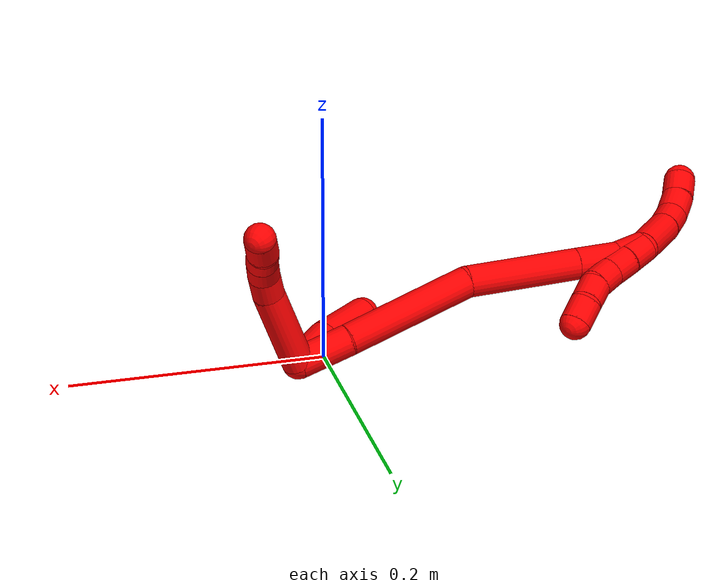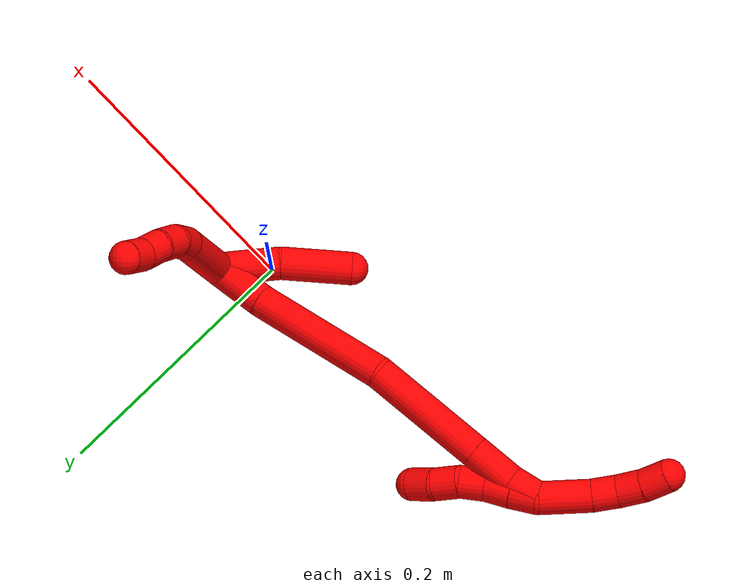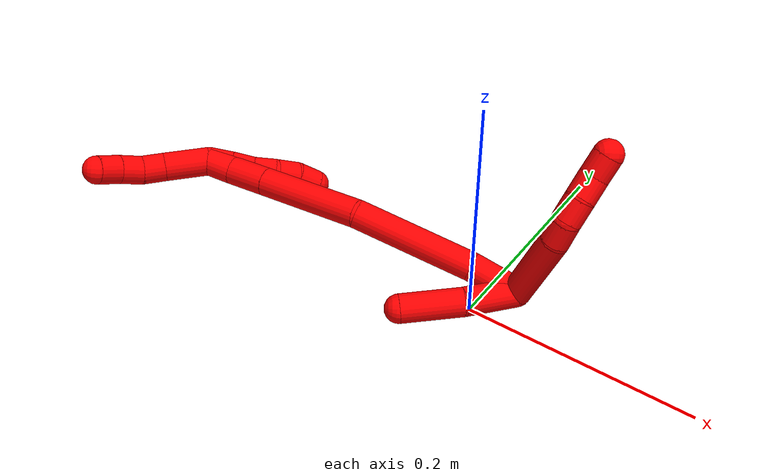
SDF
<sdf version="1.7">
 <world name="default">
  <model name="2">
   <static>0</static>
   <link name="2">
    <collision name="collision-cylinder-e_1_2_8">
     <pose>0.01769 0.029109 -0.005879 -1.77007 0.537238 -0.649055</pose>
     <geometry><cylinder><radius>0.0125</radius><length>0.069132</length></cylinder></geometry>
     <surface>
      <friction><ode><mu>1.16</mu><mu2>1.16</mu2><slip1>0</slip1><slip2>0</slip2></ode></friction>
      <contact><ode><kp>1e+06</kp><kd>1</kd><max_vel>0</max_vel><min_depth>0.001</min_depth></ode></contact>
     </surface>
    </collision>
    <visual name="visual-cylinder-e_1_2_8">
     <pose>0.01769 0.029109 -0.005879 -1.77007 0.537238 -0.649055</pose>
     <geometry><cylinder><radius>0.0125</radius><length>0.069132</length></cylinder></geometry>
     <material><ambient>1 0 0 1</ambient></material>
    </visual>
    <collision name="collision-cylinder-e_2_8_9">
     <pose>0.038823 0.067751 -0.013688 -1.77066 0.340202 -0.414064</pose>
     <geometry><cylinder><radius>0.0125</radius><length>0.020637</length></cylinder></geometry>
     <surface>
      <friction><ode><mu>1.16</mu><mu2>1.16</mu2><slip1>0</slip1><slip2>0</slip2></ode></friction>
      <contact><ode><kp>1e+06</kp><kd>1</kd><max_vel>0</max_vel><min_depth>0.001</min_depth></ode></contact>
     </surface>
    </collision>
    <visual name="visual-cylinder-e_2_8_9">
     <pose>0.038823 0.067751 -0.013688 -1.77066 0.340202 -0.414064</pose>
     <geometry><cylinder><radius>0.0125</radius><length>0.020637</length></cylinder></geometry>
     <material><ambient>1 0 0 1</ambient></material>
    </visual>
    <collision name="collision-cylinder-e_3_9_10">
     <pose>0.042839 0.086607 -0.019432 -1.95904 0.056856 -0.084654</pose>
     <geometry><cylinder><radius>0.0125</radius><length>0.020175</length></cylinder></geometry>
     <surface>
      <friction><ode><mu>1.16</mu><mu2>1.16</mu2><slip1>0</slip1><slip2>0</slip2></ode></friction>
      <contact><ode><kp>1e+06</kp><kd>1</kd><max_vel>0</max_vel><min_depth>0.001</min_depth></ode></contact>
     </surface>
    </collision>
    <visual name="visual-cylinder-e_3_9_10">
     <pose>0.042839 0.086607 -0.019432 -1.95904 0.056856 -0.084654</pose>
     <geometry><cylinder><radius>0.0125</radius><length>0.020175</length></cylinder></geometry>
     <material><ambient>1 0 0 1</ambient></material>
    </visual>
    <collision name="collision-cylinder-e_4_10_11">
     <pose>0.042311 0.104796 -0.027788 -2.04424 -0.1101 0.179808</pose>
     <geometry><cylinder><radius>0.0125</radius><length>0.020048</length></cylinder></geometry>
     <surface>
      <friction><ode><mu>1.16</mu><mu2>1.16</mu2><slip1>0</slip1><slip2>0</slip2></ode></friction>
      <contact><ode><kp>1e+06</kp><kd>1</kd><max_vel>0</max_vel><min_depth>0.001</min_depth></ode></contact>
     </surface>
    </collision>
    <visual name="visual-cylinder-e_4_10_11">
     <pose>0.042311 0.104796 -0.027788 -2.04424 -0.1101 0.179808</pose>
     <geometry><cylinder><radius>0.0125</radius><length>0.020048</length></cylinder></geometry>
     <material><ambient>1 0 0 1</ambient></material>
    </visual>
    <collision name="collision-cylinder-e_5_11_6">
     <pose>0.042404 0.12289 -0.036006 -1.94984 0.11968 -0.176248</pose>
     <geometry><cylinder><radius>0.0125</radius><length>0.020008</length></cylinder></geometry>
     <surface>
      <friction><ode><mu>1.16</mu><mu2>1.16</mu2><slip1>0</slip1><slip2>0</slip2></ode></friction>
      <contact><ode><kp>1e+06</kp><kd>1</kd><max_vel>0</max_vel><min_depth>0.001</min_depth></ode></contact>
     </surface>
    </collision>
    <visual name="visual-cylinder-e_5_11_6">
     <pose>0.042404 0.12289 -0.036006 -1.94984 0.11968 -0.176248</pose>
     <geometry><cylinder><radius>0.0125</radius><length>0.020008</length></cylinder></geometry>
     <material><ambient>1 0 0 1</ambient></material>
    </visual>
    <collision name="collision-cylinder-e_1_2_12">
     <pose>0.002211 -0.004183 0.022674 0.182448 0.095597 0.008752</pose>
     <geometry><cylinder><radius>0.0125</radius><length>0.046326</length></cylinder></geometry>
     <surface>
      <friction><ode><mu>1.16</mu><mu2>1.16</mu2><slip1>0</slip1><slip2>0</slip2></ode></friction>
      <contact><ode><kp>1e+06</kp><kd>1</kd><max_vel>0</max_vel><min_depth>0.001</min_depth></ode></contact>
     </surface>
    </collision>
    <visual name="visual-cylinder-e_1_2_12">
     <pose>0.002211 -0.004183 0.022674 0.182448 0.095597 0.008752</pose>
     <geometry><cylinder><radius>0.0125</radius><length>0.046326</length></cylinder></geometry>
     <material><ambient>1 0 0 1</ambient></material>
    </visual>
    <collision name="collision-cylinder-e_2_12_5">
     <pose>0.002243 -0.013125 0.071671 0.17883 -0.081286 -0.007292</pose>
     <geometry><cylinder><radius>0.0125</radius><length>0.053674</length></cylinder></geometry>
     <surface>
      <friction><ode><mu>1.16</mu><mu2>1.16</mu2><slip1>0</slip1><slip2>0</slip2></ode></friction>
      <contact><ode><kp>1e+06</kp><kd>1</kd><max_vel>0</max_vel><min_depth>0.001</min_depth></ode></contact>
     </surface>
    </collision>
    <visual name="visual-cylinder-e_2_12_5">
     <pose>0.002243 -0.013125 0.071671 0.17883 -0.081286 -0.007292</pose>
     <geometry><cylinder><radius>0.0125</radius><length>0.053674</length></cylinder></geometry>
     <material><ambient>1 0 0 1</ambient></material>
    </visual>
    <collision name="collision-cylinder-e_1_2_13">
     <pose>-0.009684 0.006986 0.017795 -0.374066 -0.46888 0.090334</pose>
     <geometry><cylinder><radius>0.0125</radius><length>0.04286</length></cylinder></geometry>
     <surface>
      <friction><ode><mu>1.16</mu><mu2>1.16</mu2><slip1>0</slip1><slip2>0</slip2></ode></friction>
      <contact><ode><kp>1e+06</kp><kd>1</kd><max_vel>0</max_vel><min_depth>0.001</min_depth></ode></contact>
     </surface>
    </collision>
    <visual name="visual-cylinder-e_1_2_13">
     <pose>-0.009684 0.006986 0.017795 -0.374066 -0.46888 0.090334</pose>
     <geometry><cylinder><radius>0.0125</radius><length>0.04286</length></cylinder></geometry>
     <material><ambient>1 0 0 1</ambient></material>
    </visual>
    <collision name="collision-cylinder-e_2_13_14">
     <pose>-0.040564 0.028017 0.082438 -0.291304 -0.408959 0.060822</pose>
     <geometry><cylinder><radius>0.0125</radius><length>0.106606</length></cylinder></geometry>
     <surface>
      <friction><ode><mu>1.16</mu><mu2>1.16</mu2><slip1>0</slip1><slip2>0</slip2></ode></friction>
      <contact><ode><kp>1e+06</kp><kd>1</kd><max_vel>0</max_vel><min_depth>0.001</min_depth></ode></contact>
     </surface>
    </collision>
    <visual name="visual-cylinder-e_2_13_14">
     <pose>-0.040564 0.028017 0.082438 -0.291304 -0.408959 0.060822</pose>
     <geometry><cylinder><radius>0.0125</radius><length>0.106606</length></cylinder></geometry>
     <material><ambient>1 0 0 1</ambient></material>
    </visual>
    <collision name="collision-cylinder-e_3_14_15">
     <pose>-0.089063 0.046143 0.165737 -0.111453 -0.639872 0.036961</pose>
     <geometry><cylinder><radius>0.0125</radius><length>0.091452</length></cylinder></geometry>
     <surface>
      <friction><ode><mu>1.16</mu><mu2>1.16</mu2><slip1>0</slip1><slip2>0</slip2></ode></friction>
      <contact><ode><kp>1e+06</kp><kd>1</kd><max_vel>0</max_vel><min_depth>0.001</min_depth></ode></contact>
     </surface>
    </collision>
    <visual name="visual-cylinder-e_3_14_15">
     <pose>-0.089063 0.046143 0.165737 -0.111453 -0.639872 0.036961</pose>
     <geometry><cylinder><radius>0.0125</radius><length>0.091452</length></cylinder></geometry>
     <material><ambient>1 0 0 1</ambient></material>
    </visual>
    <collision name="collision-cylinder-e_4_15_16">
     <pose>-0.12693 0.051699 0.216184 -0.105086 -0.643959 0.035084</pose>
     <geometry><cylinder><radius>0.0125</radius><length>0.035193</length></cylinder></geometry>
     <surface>
      <friction><ode><mu>1.16</mu><mu2>1.16</mu2><slip1>0</slip1><slip2>0</slip2></ode></friction>
      <contact><ode><kp>1e+06</kp><kd>1</kd><max_vel>0</max_vel><min_depth>0.001</min_depth></ode></contact>
     </surface>
    </collision>
    <visual name="visual-cylinder-e_4_15_16">
     <pose>-0.12693 0.051699 0.216184 -0.105086 -0.643959 0.035084</pose>
     <geometry><cylinder><radius>0.0125</radius><length>0.035193</length></cylinder></geometry>
     <material><ambient>1 0 0 1</ambient></material>
    </visual>
    <collision name="collision-cylinder-e_5_16_1">
     <pose>-0.142692 0.055354 0.24071 -0.204042 -0.450215 0.046877</pose>
     <geometry><cylinder><radius>0.0125</radius><length>0.023889</length></cylinder></geometry>
     <surface>
      <friction><ode><mu>1.16</mu><mu2>1.16</mu2><slip1>0</slip1><slip2>0</slip2></ode></friction>
      <contact><ode><kp>1e+06</kp><kd>1</kd><max_vel>0</max_vel><min_depth>0.001</min_depth></ode></contact>
     </surface>
    </collision>
    <visual name="visual-cylinder-e_5_16_1">
     <pose>-0.142692 0.055354 0.24071 -0.204042 -0.450215 0.046877</pose>
     <geometry><cylinder><radius>0.0125</radius><length>0.023889</length></cylinder></geometry>
     <material><ambient>1 0 0 1</ambient></material>
    </visual>
    <collision name="collision-cylinder-e_1_1_17">
     <pose>-0.147041 0.053923 0.270613 0.184249 0.04305 0.003978</pose>
     <geometry><cylinder><radius>0.0125</radius><length>0.039448</length></cylinder></geometry>
     <surface>
      <friction><ode><mu>1.16</mu><mu2>1.16</mu2><slip1>0</slip1><slip2>0</slip2></ode></friction>
      <contact><ode><kp>1e+06</kp><kd>1</kd><max_vel>0</max_vel><min_depth>0.001</min_depth></ode></contact>
     </surface>
    </collision>
    <visual name="visual-cylinder-e_1_1_17">
     <pose>-0.147041 0.053923 0.270613 0.184249 0.04305 0.003978</pose>
     <geometry><cylinder><radius>0.0125</radius><length>0.039448</length></cylinder></geometry>
     <material><ambient>1 0 0 1</ambient></material>
    </visual>
    <collision name="collision-cylinder-e_2_17_18">
     <pose>-0.144443 0.048724 0.299793 0.160598 0.174248 0.014057</pose>
     <geometry><cylinder><radius>0.0125</radius><length>0.020176</length></cylinder></geometry>
     <surface>
      <friction><ode><mu>1.16</mu><mu2>1.16</mu2><slip1>0</slip1><slip2>0</slip2></ode></friction>
      <contact><ode><kp>1e+06</kp><kd>1</kd><max_vel>0</max_vel><min_depth>0.001</min_depth></ode></contact>
     </surface>
    </collision>
    <visual name="visual-cylinder-e_2_17_18">
     <pose>-0.144443 0.048724 0.299793 0.160598 0.174248 0.014057</pose>
     <geometry><cylinder><radius>0.0125</radius><length>0.020176</length></cylinder></geometry>
     <material><ambient>1 0 0 1</ambient></material>
    </visual>
    <collision name="collision-cylinder-e_3_18_19">
     <pose>-0.13964 0.047812 0.319221 -0.07025 0.306669 -0.010861</pose>
     <geometry><cylinder><radius>0.0125</radius><length>0.020233</length></cylinder></geometry>
     <surface>
      <friction><ode><mu>1.16</mu><mu2>1.16</mu2><slip1>0</slip1><slip2>0</slip2></ode></friction>
      <contact><ode><kp>1e+06</kp><kd>1</kd><max_vel>0</max_vel><min_depth>0.001</min_depth></ode></contact>
     </surface>
    </collision>
    <visual name="visual-cylinder-e_3_18_19">
     <pose>-0.13964 0.047812 0.319221 -0.07025 0.306669 -0.010861</pose>
     <geometry><cylinder><radius>0.0125</radius><length>0.020233</length></cylinder></geometry>
     <material><ambient>1 0 0 1</ambient></material>
    </visual>
    <collision name="collision-cylinder-e_4_19_4">
     <pose>-0.132084 0.048951 0.337839 -0.051314 0.463407 -0.01211</pose>
     <geometry><cylinder><radius>0.0125</radius><length>0.020143</length></cylinder></geometry>
     <surface>
      <friction><ode><mu>1.16</mu><mu2>1.16</mu2><slip1>0</slip1><slip2>0</slip2></ode></friction>
      <contact><ode><kp>1e+06</kp><kd>1</kd><max_vel>0</max_vel><min_depth>0.001</min_depth></ode></contact>
     </surface>
    </collision>
    <visual name="visual-cylinder-e_4_19_4">
     <pose>-0.132084 0.048951 0.337839 -0.051314 0.463407 -0.01211</pose>
     <geometry><cylinder><radius>0.0125</radius><length>0.020143</length></cylinder></geometry>
     <material><ambient>1 0 0 1</ambient></material>
    </visual>
    <collision name="collision-cylinder-e_1_1_20">
     <pose>-0.146553 0.056493 0.241386 3.0364 0.134097 1.81175</pose>
     <geometry><cylinder><radius>0.0125</radius><length>0.02</length></cylinder></geometry>
     <surface>
      <friction><ode><mu>1.16</mu><mu2>1.16</mu2><slip1>0</slip1><slip2>0</slip2></ode></friction>
      <contact><ode><kp>1e+06</kp><kd>1</kd><max_vel>0</max_vel><min_depth>0.001</min_depth></ode></contact>
     </surface>
    </collision>
    <visual name="visual-cylinder-e_1_1_20">
     <pose>-0.146553 0.056493 0.241386 3.0364 0.134097 1.81175</pose>
     <geometry><cylinder><radius>0.0125</radius><length>0.02</length></cylinder></geometry>
     <material><ambient>1 0 0 1</ambient></material>
    </visual>
    <collision name="collision-cylinder-e_2_20_21">
     <pose>-0.143387 0.054015 0.221804 2.99492 0.183889 1.79604</pose>
     <geometry><cylinder><radius>0.0125</radius><length>0.02</length></cylinder></geometry>
     <surface>
      <friction><ode><mu>1.16</mu><mu2>1.16</mu2><slip1>0</slip1><slip2>0</slip2></ode></friction>
      <contact><ode><kp>1e+06</kp><kd>1</kd><max_vel>0</max_vel><min_depth>0.001</min_depth></ode></contact>
     </surface>
    </collision>
    <visual name="visual-cylinder-e_2_20_21">
     <pose>-0.143387 0.054015 0.221804 2.99492 0.183889 1.79604</pose>
     <geometry><cylinder><radius>0.0125</radius><length>0.02</length></cylinder></geometry>
     <material><ambient>1 0 0 1</ambient></material>
    </visual>
    <collision name="collision-cylinder-e_3_21_22">
     <pose>-0.140881 0.052402 0.202103 3.12391 0.067817 2.63166</pose>
     <geometry><cylinder><radius>0.0125</radius><length>0.02</length></cylinder></geometry>
     <surface>
      <friction><ode><mu>1.16</mu><mu2>1.16</mu2><slip1>0</slip1><slip2>0</slip2></ode></friction>
      <contact><ode><kp>1e+06</kp><kd>1</kd><max_vel>0</max_vel><min_depth>0.001</min_depth></ode></contact>
     </surface>
    </collision>
    <visual name="visual-cylinder-e_3_21_22">
     <pose>-0.140881 0.052402 0.202103 3.12391 0.067817 2.63166</pose>
     <geometry><cylinder><radius>0.0125</radius><length>0.02</length></cylinder></geometry>
     <material><ambient>1 0 0 1</ambient></material>
    </visual>
    <collision name="collision-cylinder-e_4_22_23">
     <pose>-0.142269 0.050847 0.182441 3.00016 -0.208022 -1.94917</pose>
     <geometry><cylinder><radius>0.0125</radius><length>0.02</length></cylinder></geometry>
     <surface>
      <friction><ode><mu>1.16</mu><mu2>1.16</mu2><slip1>0</slip1><slip2>0</slip2></ode></friction>
      <contact><ode><kp>1e+06</kp><kd>1</kd><max_vel>0</max_vel><min_depth>0.001</min_depth></ode></contact>
     </surface>
    </collision>
    <visual name="visual-cylinder-e_4_22_23">
     <pose>-0.142269 0.050847 0.182441 3.00016 -0.208022 -1.94917</pose>
     <geometry><cylinder><radius>0.0125</radius><length>0.02</length></cylinder></geometry>
     <material><ambient>1 0 0 1</ambient></material>
    </visual>
    <collision name="collision-cylinder-e_5_23_3">
     <pose>-0.146078 0.045691 0.16366 2.74799 -0.175297 -0.830242</pose>
     <geometry><cylinder><radius>0.0125</radius><length>0.02</length></cylinder></geometry>
     <surface>
      <friction><ode><mu>1.16</mu><mu2>1.16</mu2><slip1>0</slip1><slip2>0</slip2></ode></friction>
      <contact><ode><kp>1e+06</kp><kd>1</kd><max_vel>0</max_vel><min_depth>0.001</min_depth></ode></contact>
     </surface>
    </collision>
    <visual name="visual-cylinder-e_5_23_3">
     <pose>-0.146078 0.045691 0.16366 2.74799 -0.175297 -0.830242</pose>
     <geometry><cylinder><radius>0.0125</radius><length>0.02</length></cylinder></geometry>
     <material><ambient>1 0 0 1</ambient></material>
    </visual>
    <collision name="collision-sphere-3">
     <pose>-0.147822 0.041915 0.154567 0 -0 0</pose>
     <geometry><sphere><radius>0.0125</radius></sphere></geometry>
     <surface>
      <friction><ode><mu>1.16</mu><mu2>1.16</mu2><slip1>0</slip1><slip2>0</slip2></ode></friction>
      <contact><ode><kp>1e+06</kp><kd>1</kd><max_vel>0</max_vel><min_depth>0.001</min_depth></ode></contact>
     </surface>
    </collision>
    <visual name="visual-sphere-3">
     <pose>-0.147822 0.041915 0.154567 0 -0 0</pose>
     <geometry><sphere><radius>0.0125</radius></sphere></geometry>
     <material><ambient>1 0 0 1</ambient></material>
    </visual>
    <collision name="collision-sphere-23">
     <pose>-0.144334 0.049467 0.172754 0 -0 0</pose>
     <geometry><sphere><radius>0.0125</radius></sphere></geometry>
     <surface>
      <friction><ode><mu>1.16</mu><mu2>1.16</mu2><slip1>0</slip1><slip2>0</slip2></ode></friction>
      <contact><ode><kp>1e+06</kp><kd>1</kd><max_vel>0</max_vel><min_depth>0.001</min_depth></ode></contact>
     </surface>
    </collision>
    <visual name="visual-sphere-23">
     <pose>-0.144334 0.049467 0.172754 0 -0 0</pose>
     <geometry><sphere><radius>0.0125</radius></sphere></geometry>
     <material><ambient>1 0 0 1</ambient></material>
    </visual>
    <collision name="collision-sphere-22">
     <pose>-0.140203 0.052226 0.192128 0 -0 0</pose>
     <geometry><sphere><radius>0.0125</radius></sphere></geometry>
     <surface>
      <friction><ode><mu>1.16</mu><mu2>1.16</mu2><slip1>0</slip1><slip2>0</slip2></ode></friction>
      <contact><ode><kp>1e+06</kp><kd>1</kd><max_vel>0</max_vel><min_depth>0.001</min_depth></ode></contact>
     </surface>
    </collision>
    <visual name="visual-sphere-22">
     <pose>-0.140203 0.052226 0.192128 0 -0 0</pose>
     <geometry><sphere><radius>0.0125</radius></sphere></geometry>
     <material><ambient>1 0 0 1</ambient></material>
    </visual>
    <collision name="collision-sphere-21">
     <pose>-0.141559 0.052579 0.212079 0 -0 0</pose>
     <geometry><sphere><radius>0.0125</radius></sphere></geometry>
     <surface>
      <friction><ode><mu>1.16</mu><mu2>1.16</mu2><slip1>0</slip1><slip2>0</slip2></ode></friction>
      <contact><ode><kp>1e+06</kp><kd>1</kd><max_vel>0</max_vel><min_depth>0.001</min_depth></ode></contact>
     </surface>
    </collision>
    <visual name="visual-sphere-21">
     <pose>-0.141559 0.052579 0.212079 0 -0 0</pose>
     <geometry><sphere><radius>0.0125</radius></sphere></geometry>
     <material><ambient>1 0 0 1</ambient></material>
    </visual>
    <collision name="collision-sphere-20">
     <pose>-0.145216 0.055452 0.23153 0 -0 0</pose>
     <geometry><sphere><radius>0.0125</radius></sphere></geometry>
     <surface>
      <friction><ode><mu>1.16</mu><mu2>1.16</mu2><slip1>0</slip1><slip2>0</slip2></ode></friction>
      <contact><ode><kp>1e+06</kp><kd>1</kd><max_vel>0</max_vel><min_depth>0.001</min_depth></ode></contact>
     </surface>
    </collision>
    <visual name="visual-sphere-20">
     <pose>-0.145216 0.055452 0.23153 0 -0 0</pose>
     <geometry><sphere><radius>0.0125</radius></sphere></geometry>
     <material><ambient>1 0 0 1</ambient></material>
    </visual>
    <collision name="collision-sphere-4">
     <pose>-0.127582 0.049414 0.346837 0 -0 0</pose>
     <geometry><sphere><radius>0.0125</radius></sphere></geometry>
     <surface>
      <friction><ode><mu>1.16</mu><mu2>1.16</mu2><slip1>0</slip1><slip2>0</slip2></ode></friction>
      <contact><ode><kp>1e+06</kp><kd>1</kd><max_vel>0</max_vel><min_depth>0.001</min_depth></ode></contact>
     </surface>
    </collision>
    <visual name="visual-sphere-4">
     <pose>-0.127582 0.049414 0.346837 0 -0 0</pose>
     <geometry><sphere><radius>0.0125</radius></sphere></geometry>
     <material><ambient>1 0 0 1</ambient></material>
    </visual>
    <collision name="collision-sphere-6">
     <pose>0.043598 0.132118 -0.039681 0 -0 0</pose>
     <geometry><sphere><radius>0.0125</radius></sphere></geometry>
     <surface>
      <friction><ode><mu>1.16</mu><mu2>1.16</mu2><slip1>0</slip1><slip2>0</slip2></ode></friction>
      <contact><ode><kp>1e+06</kp><kd>1</kd><max_vel>0</max_vel><min_depth>0.001</min_depth></ode></contact>
     </surface>
    </collision>
    <visual name="visual-sphere-6">
     <pose>0.043598 0.132118 -0.039681 0 -0 0</pose>
     <geometry><sphere><radius>0.0125</radius></sphere></geometry>
     <material><ambient>1 0 0 1</ambient></material>
    </visual>
    <collision name="collision-sphere-11">
     <pose>0.041209 0.113663 -0.03233 0 -0 0</pose>
     <geometry><sphere><radius>0.0125</radius></sphere></geometry>
     <surface>
      <friction><ode><mu>1.16</mu><mu2>1.16</mu2><slip1>0</slip1><slip2>0</slip2></ode></friction>
      <contact><ode><kp>1e+06</kp><kd>1</kd><max_vel>0</max_vel><min_depth>0.001</min_depth></ode></contact>
     </surface>
    </collision>
    <visual name="visual-sphere-11">
     <pose>0.041209 0.113663 -0.03233 0 -0 0</pose>
     <geometry><sphere><radius>0.0125</radius></sphere></geometry>
     <material><ambient>1 0 0 1</ambient></material>
    </visual>
    <collision name="collision-sphere-10">
     <pose>0.043412 0.095928 -0.023245 0 -0 0</pose>
     <geometry><sphere><radius>0.0125</radius></sphere></geometry>
     <surface>
      <friction><ode><mu>1.16</mu><mu2>1.16</mu2><slip1>0</slip1><slip2>0</slip2></ode></friction>
      <contact><ode><kp>1e+06</kp><kd>1</kd><max_vel>0</max_vel><min_depth>0.001</min_depth></ode></contact>
     </surface>
    </collision>
    <visual name="visual-sphere-10">
     <pose>0.043412 0.095928 -0.023245 0 -0 0</pose>
     <geometry><sphere><radius>0.0125</radius></sphere></geometry>
     <material><ambient>1 0 0 1</ambient></material>
    </visual>
    <collision name="collision-sphere-9">
     <pose>0.042266 0.077285 -0.01562 0 -0 0</pose>
     <geometry><sphere><radius>0.0125</radius></sphere></geometry>
     <surface>
      <friction><ode><mu>1.16</mu><mu2>1.16</mu2><slip1>0</slip1><slip2>0</slip2></ode></friction>
      <contact><ode><kp>1e+06</kp><kd>1</kd><max_vel>0</max_vel><min_depth>0.001</min_depth></ode></contact>
     </surface>
    </collision>
    <visual name="visual-sphere-9">
     <pose>0.042266 0.077285 -0.01562 0 -0 0</pose>
     <geometry><sphere><radius>0.0125</radius></sphere></geometry>
     <material><ambient>1 0 0 1</ambient></material>
    </visual>
    <collision name="collision-sphere-2">
     <geometry><sphere><radius>0.0125</radius></sphere></geometry>
     <surface>
      <friction><ode><mu>1.16</mu><mu2>1.16</mu2><slip1>0</slip1><slip2>0</slip2></ode></friction>
      <contact><ode><kp>1e+06</kp><kd>1</kd><max_vel>0</max_vel><min_depth>0.001</min_depth></ode></contact>
     </surface>
    </collision>
    <visual name="visual-sphere-2">
     <geometry><sphere><radius>0.0125</radius></sphere></geometry>
     <material><ambient>1 0 0 1</ambient></material>
    </visual>
    <collision name="collision-sphere-19">
     <pose>-0.136586 0.048489 0.328842 0 -0 0</pose>
     <geometry><sphere><radius>0.0125</radius></sphere></geometry>
     <surface>
      <friction><ode><mu>1.16</mu><mu2>1.16</mu2><slip1>0</slip1><slip2>0</slip2></ode></friction>
      <contact><ode><kp>1e+06</kp><kd>1</kd><max_vel>0</max_vel><min_depth>0.001</min_depth></ode></contact>
     </surface>
    </collision>
    <visual name="visual-sphere-19">
     <pose>-0.136586 0.048489 0.328842 0 -0 0</pose>
     <geometry><sphere><radius>0.0125</radius></sphere></geometry>
     <material><ambient>1 0 0 1</ambient></material>
    </visual>
    <collision name="collision-sphere-8">
     <pose>0.03538 0.058218 -0.011757 0 -0 0</pose>
     <geometry><sphere><radius>0.0125</radius></sphere></geometry>
     <surface>
      <friction><ode><mu>1.16</mu><mu2>1.16</mu2><slip1>0</slip1><slip2>0</slip2></ode></friction>
      <contact><ode><kp>1e+06</kp><kd>1</kd><max_vel>0</max_vel><min_depth>0.001</min_depth></ode></contact>
     </surface>
    </collision>
    <visual name="visual-sphere-8">
     <pose>0.03538 0.058218 -0.011757 0 -0 0</pose>
     <geometry><sphere><radius>0.0125</radius></sphere></geometry>
     <material><ambient>1 0 0 1</ambient></material>
    </visual>
    <collision name="collision-sphere-12">
     <pose>0.004422 -0.008367 0.045349 0 -0 0</pose>
     <geometry><sphere><radius>0.0125</radius></sphere></geometry>
     <surface>
      <friction><ode><mu>1.16</mu><mu2>1.16</mu2><slip1>0</slip1><slip2>0</slip2></ode></friction>
      <contact><ode><kp>1e+06</kp><kd>1</kd><max_vel>0</max_vel><min_depth>0.001</min_depth></ode></contact>
     </surface>
    </collision>
    <visual name="visual-sphere-12">
     <pose>0.004422 -0.008367 0.045349 0 -0 0</pose>
     <geometry><sphere><radius>0.0125</radius></sphere></geometry>
     <material><ambient>1 0 0 1</ambient></material>
    </visual>
    <collision name="collision-sphere-5">
     <pose>6.4e-05 -0.017883 0.097993 0 -0 0</pose>
     <geometry><sphere><radius>0.0125</radius></sphere></geometry>
     <surface>
      <friction><ode><mu>1.16</mu><mu2>1.16</mu2><slip1>0</slip1><slip2>0</slip2></ode></friction>
      <contact><ode><kp>1e+06</kp><kd>1</kd><max_vel>0</max_vel><min_depth>0.001</min_depth></ode></contact>
     </surface>
    </collision>
    <visual name="visual-sphere-5">
     <pose>6.4e-05 -0.017883 0.097993 0 -0 0</pose>
     <geometry><sphere><radius>0.0125</radius></sphere></geometry>
     <material><ambient>1 0 0 1</ambient></material>
    </visual>
    <collision name="collision-sphere-13">
     <pose>-0.019368 0.013971 0.035591 0 -0 0</pose>
     <geometry><sphere><radius>0.0125</radius></sphere></geometry>
     <surface>
      <friction><ode><mu>1.16</mu><mu2>1.16</mu2><slip1>0</slip1><slip2>0</slip2></ode></friction>
      <contact><ode><kp>1e+06</kp><kd>1</kd><max_vel>0</max_vel><min_depth>0.001</min_depth></ode></contact>
     </surface>
    </collision>
    <visual name="visual-sphere-13">
     <pose>-0.019368 0.013971 0.035591 0 -0 0</pose>
     <geometry><sphere><radius>0.0125</radius></sphere></geometry>
     <material><ambient>1 0 0 1</ambient></material>
    </visual>
    <collision name="collision-sphere-14">
     <pose>-0.06176 0.042064 0.129285 0 -0 0</pose>
     <geometry><sphere><radius>0.0125</radius></sphere></geometry>
     <surface>
      <friction><ode><mu>1.16</mu><mu2>1.16</mu2><slip1>0</slip1><slip2>0</slip2></ode></friction>
      <contact><ode><kp>1e+06</kp><kd>1</kd><max_vel>0</max_vel><min_depth>0.001</min_depth></ode></contact>
     </surface>
    </collision>
    <visual name="visual-sphere-14">
     <pose>-0.06176 0.042064 0.129285 0 -0 0</pose>
     <geometry><sphere><radius>0.0125</radius></sphere></geometry>
     <material><ambient>1 0 0 1</ambient></material>
    </visual>
    <collision name="collision-sphere-15">
     <pose>-0.116366 0.050223 0.202189 0 -0 0</pose>
     <geometry><sphere><radius>0.0125</radius></sphere></geometry>
     <surface>
      <friction><ode><mu>1.16</mu><mu2>1.16</mu2><slip1>0</slip1><slip2>0</slip2></ode></friction>
      <contact><ode><kp>1e+06</kp><kd>1</kd><max_vel>0</max_vel><min_depth>0.001</min_depth></ode></contact>
     </surface>
    </collision>
    <visual name="visual-sphere-15">
     <pose>-0.116366 0.050223 0.202189 0 -0 0</pose>
     <geometry><sphere><radius>0.0125</radius></sphere></geometry>
     <material><ambient>1 0 0 1</ambient></material>
    </visual>
    <collision name="collision-sphere-16">
     <pose>-0.137494 0.053175 0.230179 0 -0 0</pose>
     <geometry><sphere><radius>0.0125</radius></sphere></geometry>
     <surface>
      <friction><ode><mu>1.16</mu><mu2>1.16</mu2><slip1>0</slip1><slip2>0</slip2></ode></friction>
      <contact><ode><kp>1e+06</kp><kd>1</kd><max_vel>0</max_vel><min_depth>0.001</min_depth></ode></contact>
     </surface>
    </collision>
    <visual name="visual-sphere-16">
     <pose>-0.137494 0.053175 0.230179 0 -0 0</pose>
     <geometry><sphere><radius>0.0125</radius></sphere></geometry>
     <material><ambient>1 0 0 1</ambient></material>
    </visual>
    <collision name="collision-sphere-1">
     <pose>-0.14789 0.057533 0.251241 0 -0 0</pose>
     <geometry><sphere><radius>0.0125</radius></sphere></geometry>
     <surface>
      <friction><ode><mu>1.16</mu><mu2>1.16</mu2><slip1>0</slip1><slip2>0</slip2></ode></friction>
      <contact><ode><kp>1e+06</kp><kd>1</kd><max_vel>0</max_vel><min_depth>0.001</min_depth></ode></contact>
     </surface>
    </collision>
    <visual name="visual-sphere-1">
     <pose>-0.14789 0.057533 0.251241 0 -0 0</pose>
     <geometry><sphere><radius>0.0125</radius></sphere></geometry>
     <material><ambient>1 0 0 1</ambient></material>
    </visual>
    <collision name="collision-sphere-18">
     <pose>-0.142694 0.047135 0.309601 0 -0 0</pose>
     <geometry><sphere><radius>0.0125</radius></sphere></geometry>
     <surface>
      <friction><ode><mu>1.16</mu><mu2>1.16</mu2><slip1>0</slip1><slip2>0</slip2></ode></friction>
      <contact><ode><kp>1e+06</kp><kd>1</kd><max_vel>0</max_vel><min_depth>0.001</min_depth></ode></contact>
     </surface>
    </collision>
    <visual name="visual-sphere-18">
     <pose>-0.142694 0.047135 0.309601 0 -0 0</pose>
     <geometry><sphere><radius>0.0125</radius></sphere></geometry>
     <material><ambient>1 0 0 1</ambient></material>
    </visual>
    <collision name="collision-sphere-17">
     <pose>-0.146192 0.050313 0.289986 0 -0 0</pose>
     <geometry><sphere><radius>0.0125</radius></sphere></geometry>
     <surface>
      <friction><ode><mu>1.16</mu><mu2>1.16</mu2><slip1>0</slip1><slip2>0</slip2></ode></friction>
      <contact><ode><kp>1e+06</kp><kd>1</kd><max_vel>0</max_vel><min_depth>0.001</min_depth></ode></contact>
     </surface>
    </collision>
    <visual name="visual-sphere-17">
     <pose>-0.146192 0.050313 0.289986 0 -0 0</pose>
     <geometry><sphere><radius>0.0125</radius></sphere></geometry>
     <material><ambient>1 0 0 1</ambient></material>
    </visual>
    <inertial>
     <pose>-0.059382 0.039626 0.121095 0 -0 0</pose>
     <mass>0.75</mass>
     <inertia>
      <ixx>0.000211</ixx>
      <ixy>0</ixy>
      <ixz>0</ixz>
      <iyy>0.000228</iyy>
      <iyz>0</iyz>
      <izz>3.5e-05</izz>
     </inertia>
    </inertial>
   </link>
   <pose>0.027153 0.028965 0.01227 1.38885 -0.373529 -0.764714</pose>
  </model>
 </world>
</sdf>
